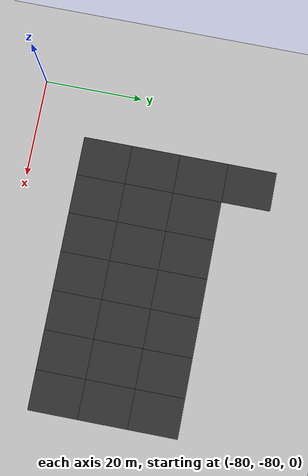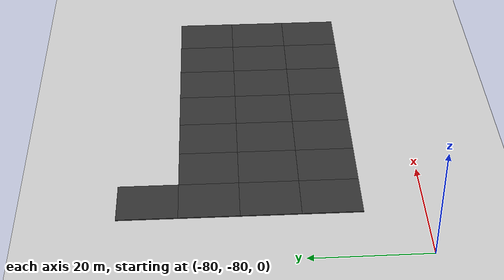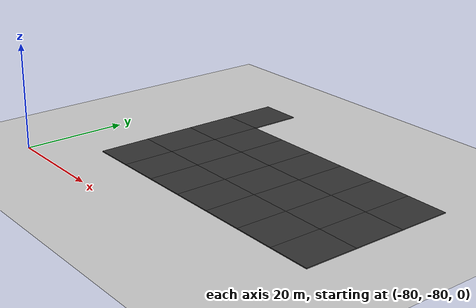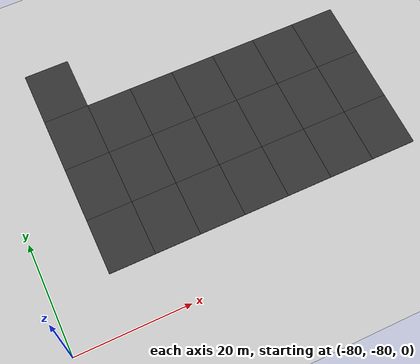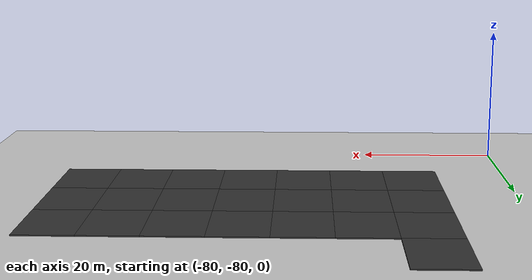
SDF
<sdf version="1.7">
 <world name="default">
  <model name="ground_plane">
   <static>1</static>
   <link name="link">
    <collision name="collision">
     <geometry><plane><normal>0 0 1</normal><size>100 100</size></plane></geometry>
     <surface>
      <contact><collide_bitmask>65535</collide_bitmask></contact>
      <friction><ode><mu>100</mu><mu2>50</mu2></ode></friction>
     </surface>
    </collision>
    <visual name="visual">
     <cast_shadows>0</cast_shadows>
     <geometry><plane><normal>0 0 1</normal><size>100 100</size></plane></geometry>
     <material>
      <script><uri>file://media/materials/scripts/gazebo.material</uri><name>Gazebo/Grey</name></script>
     </material>
    </visual>
   </link>
  </model>
  <model name="mud_box_39">
   <link name="link">
    <inertial>
     <mass>1</mass>
     <inertia><ixx>1</ixx><ixy>0</ixy><ixz>0</ixz><iyy>1</iyy><iyz>0</iyz><izz>1</izz></inertia>
    </inertial>
    <visual name="visual">
     <cast_shadows>0</cast_shadows>
     <geometry><box><size>8 10 0.2</size></box></geometry>
     <material>
      <script>
       <uri>model://mud_box/materials/scripts</uri>
       <uri>model://mud_box/materials/textures</uri>
       <name>vrc/mud</name>
      </script>
      <shader type="pixel"><normal_map>__default__</normal_map></shader>
      <ambient>0.2 0.2 0.2 1</ambient>
      <diffuse>0.2 0.2 0.2 1</diffuse>
      <specular>0.2 0.2 0.2 1</specular>
      <emissive>0 0 0 1</emissive>
     </material>
    </visual>
    <collision name="collision">
     <geometry><box><size>8 10 0.2</size></box></geometry>
     <surface>
      <friction>
       <ode><mu>1</mu><mu2>1</mu2><fdir1>0 0 0</fdir1><slip1>0</slip1><slip2>0</slip2></ode>
       <torsional>
        <coefficient>1</coefficient>
        <patch_radius>0</patch_radius>
        <surface_radius>0</surface_radius>
        <use_patch_radius>1</use_patch_radius>
        <ode><slip>0</slip></ode>
       </torsional>
      </friction>
      <bounce><restitution_coefficient>0</restitution_coefficient><threshold>1e+06</threshold></bounce>
      <contact>
       <collide_without_contact>0</collide_without_contact>
       <collide_without_contact_bitmask>1</collide_without_contact_bitmask>
       <collide_bitmask>1</collide_bitmask>
       <ode>
        <soft_cfm>0</soft_cfm>
        <soft_erp>0.2</soft_erp>
        <kp>1e+13</kp>
        <kd>1</kd>
        <max_vel>0.01</max_vel>
        <min_depth>0</min_depth>
       </ode>
       <bullet>
        <split_impulse>1</split_impulse>
        <split_impulse_penetration_threshold>-0.01</split_impulse_penetration_threshold>
        <soft_cfm>0</soft_cfm>
        <soft_erp>0.2</soft_erp>
        <kp>1e+13</kp>
        <kd>1</kd>
       </bullet>
      </contact>
     </surface>
    </collision>
   </link>
   <static>1</static>
   <pose>-18 -45 0 0 -0 0</pose>
  </model>
  <model name="mud_box_48">
   <link name="link">
    <inertial>
     <mass>1</mass>
     <inertia><ixx>1</ixx><ixy>0</ixy><ixz>0</ixz><iyy>1</iyy><iyz>0</iyz><izz>1</izz></inertia>
    </inertial>
    <visual name="visual">
     <cast_shadows>0</cast_shadows>
     <geometry><box><size>8 10 0.2</size></box></geometry>
     <material>
      <script>
       <uri>model://mud_box/materials/scripts</uri>
       <uri>model://mud_box/materials/textures</uri>
       <name>vrc/mud</name>
      </script>
      <shader type="pixel"><normal_map>__default__</normal_map></shader>
      <ambient>0.2 0.2 0.2 1</ambient>
      <diffuse>0.2 0.2 0.2 1</diffuse>
      <specular>0.2 0.2 0.2 1</specular>
      <emissive>0 0 0 1</emissive>
     </material>
    </visual>
    <collision name="collision">
     <geometry><box><size>8 10 0.2</size></box></geometry>
     <surface>
      <friction>
       <ode><mu>1</mu><mu2>1</mu2><fdir1>0 0 0</fdir1><slip1>0</slip1><slip2>0</slip2></ode>
       <torsional>
        <coefficient>1</coefficient>
        <patch_radius>0</patch_radius>
        <surface_radius>0</surface_radius>
        <use_patch_radius>1</use_patch_radius>
        <ode><slip>0</slip></ode>
       </torsional>
      </friction>
      <bounce><restitution_coefficient>0</restitution_coefficient><threshold>1e+06</threshold></bounce>
      <contact>
       <collide_without_contact>0</collide_without_contact>
       <collide_without_contact_bitmask>1</collide_without_contact_bitmask>
       <collide_bitmask>1</collide_bitmask>
       <ode>
        <soft_cfm>0</soft_cfm>
        <soft_erp>0.2</soft_erp>
        <kp>1e+13</kp>
        <kd>1</kd>
        <max_vel>0.01</max_vel>
        <min_depth>0</min_depth>
       </ode>
       <bullet>
        <split_impulse>1</split_impulse>
        <split_impulse_penetration_threshold>-0.01</split_impulse_penetration_threshold>
        <soft_cfm>0</soft_cfm>
        <soft_erp>0.2</soft_erp>
        <kp>1e+13</kp>
        <kd>1</kd>
       </bullet>
      </contact>
     </surface>
    </collision>
   </link>
   <static>1</static>
   <pose>-26 -45 0 0 -0 0</pose>
  </model>
  <model name="mud_box_49">
   <link name="link">
    <inertial>
     <mass>1</mass>
     <inertia><ixx>1</ixx><ixy>0</ixy><ixz>0</ixz><iyy>1</iyy><iyz>0</iyz><izz>1</izz></inertia>
    </inertial>
    <visual name="visual">
     <cast_shadows>0</cast_shadows>
     <geometry><box><size>8 10 0.2</size></box></geometry>
     <material>
      <script>
       <uri>model://mud_box/materials/scripts</uri>
       <uri>model://mud_box/materials/textures</uri>
       <name>vrc/mud</name>
      </script>
      <shader type="pixel"><normal_map>__default__</normal_map></shader>
      <ambient>0.2 0.2 0.2 1</ambient>
      <diffuse>0.2 0.2 0.2 1</diffuse>
      <specular>0.2 0.2 0.2 1</specular>
      <emissive>0 0 0 1</emissive>
     </material>
    </visual>
    <collision name="collision">
     <geometry><box><size>8 10 0.2</size></box></geometry>
     <surface>
      <friction>
       <ode><mu>1</mu><mu2>1</mu2><fdir1>0 0 0</fdir1><slip1>0</slip1><slip2>0</slip2></ode>
       <torsional>
        <coefficient>1</coefficient>
        <patch_radius>0</patch_radius>
        <surface_radius>0</surface_radius>
        <use_patch_radius>1</use_patch_radius>
        <ode><slip>0</slip></ode>
       </torsional>
      </friction>
      <bounce><restitution_coefficient>0</restitution_coefficient><threshold>1e+06</threshold></bounce>
      <contact>
       <collide_without_contact>0</collide_without_contact>
       <collide_without_contact_bitmask>1</collide_without_contact_bitmask>
       <collide_bitmask>1</collide_bitmask>
       <ode>
        <soft_cfm>0</soft_cfm>
        <soft_erp>0.2</soft_erp>
        <kp>1e+13</kp>
        <kd>1</kd>
        <max_vel>0.01</max_vel>
        <min_depth>0</min_depth>
       </ode>
       <bullet>
        <split_impulse>1</split_impulse>
        <split_impulse_penetration_threshold>-0.01</split_impulse_penetration_threshold>
        <soft_cfm>0</soft_cfm>
        <soft_erp>0.2</soft_erp>
        <kp>1e+13</kp>
        <kd>1</kd>
       </bullet>
      </contact>
     </surface>
    </collision>
   </link>
   <static>1</static>
   <pose>-34 -45 0 0 -0 0</pose>
  </model>
  <model name="mud_box_58">
   <link name="link">
    <inertial>
     <mass>1</mass>
     <inertia><ixx>1</ixx><ixy>0</ixy><ixz>0</ixz><iyy>1</iyy><iyz>0</iyz><izz>1</izz></inertia>
    </inertial>
    <visual name="visual">
     <cast_shadows>0</cast_shadows>
     <geometry><box><size>8 10 0.2</size></box></geometry>
     <material>
      <script>
       <uri>model://mud_box/materials/scripts</uri>
       <uri>model://mud_box/materials/textures</uri>
       <name>vrc/mud</name>
      </script>
      <shader type="pixel"><normal_map>__default__</normal_map></shader>
      <ambient>0.2 0.2 0.2 1</ambient>
      <diffuse>0.2 0.2 0.2 1</diffuse>
      <specular>0.2 0.2 0.2 1</specular>
      <emissive>0 0 0 1</emissive>
     </material>
    </visual>
    <collision name="collision">
     <geometry><box><size>8 10 0.2</size></box></geometry>
     <surface>
      <friction>
       <ode><mu>1</mu><mu2>1</mu2><fdir1>0 0 0</fdir1><slip1>0</slip1><slip2>0</slip2></ode>
       <torsional>
        <coefficient>1</coefficient>
        <patch_radius>0</patch_radius>
        <surface_radius>0</surface_radius>
        <use_patch_radius>1</use_patch_radius>
        <ode><slip>0</slip></ode>
       </torsional>
      </friction>
      <bounce><restitution_coefficient>0</restitution_coefficient><threshold>1e+06</threshold></bounce>
      <contact>
       <collide_without_contact>0</collide_without_contact>
       <collide_without_contact_bitmask>1</collide_without_contact_bitmask>
       <collide_bitmask>1</collide_bitmask>
       <ode>
        <soft_cfm>0</soft_cfm>
        <soft_erp>0.2</soft_erp>
        <kp>1e+13</kp>
        <kd>1</kd>
        <max_vel>0.01</max_vel>
        <min_depth>0</min_depth>
       </ode>
       <bullet>
        <split_impulse>1</split_impulse>
        <split_impulse_penetration_threshold>-0.01</split_impulse_penetration_threshold>
        <soft_cfm>0</soft_cfm>
        <soft_erp>0.2</soft_erp>
        <kp>1e+13</kp>
        <kd>1</kd>
       </bullet>
      </contact>
     </surface>
    </collision>
   </link>
   <static>1</static>
   <pose>-42 -45 0 0 -0 0</pose>
  </model>
  <model name="mud_box_59">
   <link name="link">
    <inertial>
     <mass>1</mass>
     <inertia><ixx>1</ixx><ixy>0</ixy><ixz>0</ixz><iyy>1</iyy><iyz>0</iyz><izz>1</izz></inertia>
    </inertial>
    <visual name="visual">
     <cast_shadows>0</cast_shadows>
     <geometry><box><size>8 10 0.2</size></box></geometry>
     <material>
      <script>
       <uri>model://mud_box/materials/scripts</uri>
       <uri>model://mud_box/materials/textures</uri>
       <name>vrc/mud</name>
      </script>
      <shader type="pixel"><normal_map>__default__</normal_map></shader>
      <ambient>0.2 0.2 0.2 1</ambient>
      <diffuse>0.2 0.2 0.2 1</diffuse>
      <specular>0.2 0.2 0.2 1</specular>
      <emissive>0 0 0 1</emissive>
     </material>
    </visual>
    <collision name="collision">
     <geometry><box><size>8 10 0.2</size></box></geometry>
     <surface>
      <friction>
       <ode><mu>1</mu><mu2>1</mu2><fdir1>0 0 0</fdir1><slip1>0</slip1><slip2>0</slip2></ode>
       <torsional>
        <coefficient>1</coefficient>
        <patch_radius>0</patch_radius>
        <surface_radius>0</surface_radius>
        <use_patch_radius>1</use_patch_radius>
        <ode><slip>0</slip></ode>
       </torsional>
      </friction>
      <bounce><restitution_coefficient>0</restitution_coefficient><threshold>1e+06</threshold></bounce>
      <contact>
       <collide_without_contact>0</collide_without_contact>
       <collide_without_contact_bitmask>1</collide_without_contact_bitmask>
       <collide_bitmask>1</collide_bitmask>
       <ode>
        <soft_cfm>0</soft_cfm>
        <soft_erp>0.2</soft_erp>
        <kp>1e+13</kp>
        <kd>1</kd>
        <max_vel>0.01</max_vel>
        <min_depth>0</min_depth>
       </ode>
       <bullet>
        <split_impulse>1</split_impulse>
        <split_impulse_penetration_threshold>-0.01</split_impulse_penetration_threshold>
        <soft_cfm>0</soft_cfm>
        <soft_erp>0.2</soft_erp>
        <kp>1e+13</kp>
        <kd>1</kd>
       </bullet>
      </contact>
     </surface>
    </collision>
   </link>
   <static>1</static>
   <pose>-50 -45 0 0 -0 0</pose>
  </model>
  <model name="mud_box_72">
   <link name="link">
    <inertial>
     <mass>1</mass>
     <inertia><ixx>1</ixx><ixy>0</ixy><ixz>0</ixz><iyy>1</iyy><iyz>0</iyz><izz>1</izz></inertia>
    </inertial>
    <visual name="visual">
     <cast_shadows>0</cast_shadows>
     <geometry><box><size>8 10 0.2</size></box></geometry>
     <material>
      <script>
       <uri>model://mud_box/materials/scripts</uri>
       <uri>model://mud_box/materials/textures</uri>
       <name>vrc/mud</name>
      </script>
      <shader type="pixel"><normal_map>__default__</normal_map></shader>
      <ambient>0.2 0.2 0.2 1</ambient>
      <diffuse>0.2 0.2 0.2 1</diffuse>
      <specular>0.2 0.2 0.2 1</specular>
      <emissive>0 0 0 1</emissive>
     </material>
    </visual>
    <collision name="collision">
     <geometry><box><size>8 10 0.2</size></box></geometry>
     <surface>
      <friction>
       <ode><mu>1</mu><mu2>1</mu2><fdir1>0 0 0</fdir1><slip1>0</slip1><slip2>0</slip2></ode>
       <torsional>
        <coefficient>1</coefficient>
        <patch_radius>0</patch_radius>
        <surface_radius>0</surface_radius>
        <use_patch_radius>1</use_patch_radius>
        <ode><slip>0</slip></ode>
       </torsional>
      </friction>
      <bounce><restitution_coefficient>0</restitution_coefficient><threshold>1e+06</threshold></bounce>
      <contact>
       <collide_without_contact>0</collide_without_contact>
       <collide_without_contact_bitmask>1</collide_without_contact_bitmask>
       <collide_bitmask>1</collide_bitmask>
       <ode>
        <soft_cfm>0</soft_cfm>
        <soft_erp>0.2</soft_erp>
        <kp>1e+13</kp>
        <kd>1</kd>
        <max_vel>0.01</max_vel>
        <min_depth>0</min_depth>
       </ode>
       <bullet>
        <split_impulse>1</split_impulse>
        <split_impulse_penetration_threshold>-0.01</split_impulse_penetration_threshold>
        <soft_cfm>0</soft_cfm>
        <soft_erp>0.2</soft_erp>
        <kp>1e+13</kp>
        <kd>1</kd>
       </bullet>
      </contact>
     </surface>
    </collision>
   </link>
   <static>1</static>
   <pose>-18 -55 0 0 -0 0</pose>
  </model>
  <model name="mud_box_73">
   <link name="link">
    <inertial>
     <mass>1</mass>
     <inertia><ixx>1</ixx><ixy>0</ixy><ixz>0</ixz><iyy>1</iyy><iyz>0</iyz><izz>1</izz></inertia>
    </inertial>
    <visual name="visual">
     <cast_shadows>0</cast_shadows>
     <geometry><box><size>8 10 0.2</size></box></geometry>
     <material>
      <script>
       <uri>model://mud_box/materials/scripts</uri>
       <uri>model://mud_box/materials/textures</uri>
       <name>vrc/mud</name>
      </script>
      <shader type="pixel"><normal_map>__default__</normal_map></shader>
      <ambient>0.2 0.2 0.2 1</ambient>
      <diffuse>0.2 0.2 0.2 1</diffuse>
      <specular>0.2 0.2 0.2 1</specular>
      <emissive>0 0 0 1</emissive>
     </material>
    </visual>
    <collision name="collision">
     <geometry><box><size>8 10 0.2</size></box></geometry>
     <surface>
      <friction>
       <ode><mu>1</mu><mu2>1</mu2><fdir1>0 0 0</fdir1><slip1>0</slip1><slip2>0</slip2></ode>
       <torsional>
        <coefficient>1</coefficient>
        <patch_radius>0</patch_radius>
        <surface_radius>0</surface_radius>
        <use_patch_radius>1</use_patch_radius>
        <ode><slip>0</slip></ode>
       </torsional>
      </friction>
      <bounce><restitution_coefficient>0</restitution_coefficient><threshold>1e+06</threshold></bounce>
      <contact>
       <collide_without_contact>0</collide_without_contact>
       <collide_without_contact_bitmask>1</collide_without_contact_bitmask>
       <collide_bitmask>1</collide_bitmask>
       <ode>
        <soft_cfm>0</soft_cfm>
        <soft_erp>0.2</soft_erp>
        <kp>1e+13</kp>
        <kd>1</kd>
        <max_vel>0.01</max_vel>
        <min_depth>0</min_depth>
       </ode>
       <bullet>
        <split_impulse>1</split_impulse>
        <split_impulse_penetration_threshold>-0.01</split_impulse_penetration_threshold>
        <soft_cfm>0</soft_cfm>
        <soft_erp>0.2</soft_erp>
        <kp>1e+13</kp>
        <kd>1</kd>
       </bullet>
      </contact>
     </surface>
    </collision>
   </link>
   <static>1</static>
   <pose>-26 -55 0 0 -0 0</pose>
  </model>
  <model name="mud_box_74">
   <link name="link">
    <inertial>
     <mass>1</mass>
     <inertia><ixx>1</ixx><ixy>0</ixy><ixz>0</ixz><iyy>1</iyy><iyz>0</iyz><izz>1</izz></inertia>
    </inertial>
    <visual name="visual">
     <cast_shadows>0</cast_shadows>
     <geometry><box><size>8 10 0.2</size></box></geometry>
     <material>
      <script>
       <uri>model://mud_box/materials/scripts</uri>
       <uri>model://mud_box/materials/textures</uri>
       <name>vrc/mud</name>
      </script>
      <shader type="pixel"><normal_map>__default__</normal_map></shader>
      <ambient>0.2 0.2 0.2 1</ambient>
      <diffuse>0.2 0.2 0.2 1</diffuse>
      <specular>0.2 0.2 0.2 1</specular>
      <emissive>0 0 0 1</emissive>
     </material>
    </visual>
    <collision name="collision">
     <geometry><box><size>8 10 0.2</size></box></geometry>
     <surface>
      <friction>
       <ode><mu>1</mu><mu2>1</mu2><fdir1>0 0 0</fdir1><slip1>0</slip1><slip2>0</slip2></ode>
       <torsional>
        <coefficient>1</coefficient>
        <patch_radius>0</patch_radius>
        <surface_radius>0</surface_radius>
        <use_patch_radius>1</use_patch_radius>
        <ode><slip>0</slip></ode>
       </torsional>
      </friction>
      <bounce><restitution_coefficient>0</restitution_coefficient><threshold>1e+06</threshold></bounce>
      <contact>
       <collide_without_contact>0</collide_without_contact>
       <collide_without_contact_bitmask>1</collide_without_contact_bitmask>
       <collide_bitmask>1</collide_bitmask>
       <ode>
        <soft_cfm>0</soft_cfm>
        <soft_erp>0.2</soft_erp>
        <kp>1e+13</kp>
        <kd>1</kd>
        <max_vel>0.01</max_vel>
        <min_depth>0</min_depth>
       </ode>
       <bullet>
        <split_impulse>1</split_impulse>
        <split_impulse_penetration_threshold>-0.01</split_impulse_penetration_threshold>
        <soft_cfm>0</soft_cfm>
        <soft_erp>0.2</soft_erp>
        <kp>1e+13</kp>
        <kd>1</kd>
       </bullet>
      </contact>
     </surface>
    </collision>
   </link>
   <static>1</static>
   <pose>-34 -55 0 0 -0 0</pose>
  </model>
  <model name="mud_box_75">
   <link name="link">
    <inertial>
     <mass>1</mass>
     <inertia><ixx>1</ixx><ixy>0</ixy><ixz>0</ixz><iyy>1</iyy><iyz>0</iyz><izz>1</izz></inertia>
    </inertial>
    <visual name="visual">
     <cast_shadows>0</cast_shadows>
     <geometry><box><size>8 10 0.2</size></box></geometry>
     <material>
      <script>
       <uri>model://mud_box/materials/scripts</uri>
       <uri>model://mud_box/materials/textures</uri>
       <name>vrc/mud</name>
      </script>
      <shader type="pixel"><normal_map>__default__</normal_map></shader>
      <ambient>0.2 0.2 0.2 1</ambient>
      <diffuse>0.2 0.2 0.2 1</diffuse>
      <specular>0.2 0.2 0.2 1</specular>
      <emissive>0 0 0 1</emissive>
     </material>
    </visual>
    <collision name="collision">
     <geometry><box><size>8 10 0.2</size></box></geometry>
     <surface>
      <friction>
       <ode><mu>1</mu><mu2>1</mu2><fdir1>0 0 0</fdir1><slip1>0</slip1><slip2>0</slip2></ode>
       <torsional>
        <coefficient>1</coefficient>
        <patch_radius>0</patch_radius>
        <surface_radius>0</surface_radius>
        <use_patch_radius>1</use_patch_radius>
        <ode><slip>0</slip></ode>
       </torsional>
      </friction>
      <bounce><restitution_coefficient>0</restitution_coefficient><threshold>1e+06</threshold></bounce>
      <contact>
       <collide_without_contact>0</collide_without_contact>
       <collide_without_contact_bitmask>1</collide_without_contact_bitmask>
       <collide_bitmask>1</collide_bitmask>
       <ode>
        <soft_cfm>0</soft_cfm>
        <soft_erp>0.2</soft_erp>
        <kp>1e+13</kp>
        <kd>1</kd>
        <max_vel>0.01</max_vel>
        <min_depth>0</min_depth>
       </ode>
       <bullet>
        <split_impulse>1</split_impulse>
        <split_impulse_penetration_threshold>-0.01</split_impulse_penetration_threshold>
        <soft_cfm>0</soft_cfm>
        <soft_erp>0.2</soft_erp>
        <kp>1e+13</kp>
        <kd>1</kd>
       </bullet>
      </contact>
     </surface>
    </collision>
   </link>
   <static>1</static>
   <pose>-42 -55 0 0 -0 0</pose>
  </model>
  <model name="mud_box_76">
   <link name="link">
    <inertial>
     <mass>1</mass>
     <inertia><ixx>1</ixx><ixy>0</ixy><ixz>0</ixz><iyy>1</iyy><iyz>0</iyz><izz>1</izz></inertia>
    </inertial>
    <visual name="visual">
     <cast_shadows>0</cast_shadows>
     <geometry><box><size>8 10 0.2</size></box></geometry>
     <material>
      <script>
       <uri>model://mud_box/materials/scripts</uri>
       <uri>model://mud_box/materials/textures</uri>
       <name>vrc/mud</name>
      </script>
      <shader type="pixel"><normal_map>__default__</normal_map></shader>
      <ambient>0.2 0.2 0.2 1</ambient>
      <diffuse>0.2 0.2 0.2 1</diffuse>
      <specular>0.2 0.2 0.2 1</specular>
      <emissive>0 0 0 1</emissive>
     </material>
    </visual>
    <collision name="collision">
     <geometry><box><size>8 10 0.2</size></box></geometry>
     <surface>
      <friction>
       <ode><mu>1</mu><mu2>1</mu2><fdir1>0 0 0</fdir1><slip1>0</slip1><slip2>0</slip2></ode>
       <torsional>
        <coefficient>1</coefficient>
        <patch_radius>0</patch_radius>
        <surface_radius>0</surface_radius>
        <use_patch_radius>1</use_patch_radius>
        <ode><slip>0</slip></ode>
       </torsional>
      </friction>
      <bounce><restitution_coefficient>0</restitution_coefficient><threshold>1e+06</threshold></bounce>
      <contact>
       <collide_without_contact>0</collide_without_contact>
       <collide_without_contact_bitmask>1</collide_without_contact_bitmask>
       <collide_bitmask>1</collide_bitmask>
       <ode>
        <soft_cfm>0</soft_cfm>
        <soft_erp>0.2</soft_erp>
        <kp>1e+13</kp>
        <kd>1</kd>
        <max_vel>0.01</max_vel>
        <min_depth>0</min_depth>
       </ode>
       <bullet>
        <split_impulse>1</split_impulse>
        <split_impulse_penetration_threshold>-0.01</split_impulse_penetration_threshold>
        <soft_cfm>0</soft_cfm>
        <soft_erp>0.2</soft_erp>
        <kp>1e+13</kp>
        <kd>1</kd>
       </bullet>
      </contact>
     </surface>
    </collision>
   </link>
   <static>1</static>
   <pose>-50 -55 0 0 -0 0</pose>
  </model>
  <model name="mud_box_77">
   <link name="link">
    <inertial>
     <mass>1</mass>
     <inertia><ixx>1</ixx><ixy>0</ixy><ixz>0</ixz><iyy>1</iyy><iyz>0</iyz><izz>1</izz></inertia>
    </inertial>
    <visual name="visual">
     <cast_shadows>0</cast_shadows>
     <geometry><box><size>8 10 0.2</size></box></geometry>
     <material>
      <script>
       <uri>model://mud_box/materials/scripts</uri>
       <uri>model://mud_box/materials/textures</uri>
       <name>vrc/mud</name>
      </script>
      <shader type="pixel"><normal_map>__default__</normal_map></shader>
      <ambient>0.2 0.2 0.2 1</ambient>
      <diffuse>0.2 0.2 0.2 1</diffuse>
      <specular>0.2 0.2 0.2 1</specular>
      <emissive>0 0 0 1</emissive>
     </material>
    </visual>
    <collision name="collision">
     <geometry><box><size>8 10 0.2</size></box></geometry>
     <surface>
      <friction>
       <ode><mu>1</mu><mu2>1</mu2><fdir1>0 0 0</fdir1><slip1>0</slip1><slip2>0</slip2></ode>
       <torsional>
        <coefficient>1</coefficient>
        <patch_radius>0</patch_radius>
        <surface_radius>0</surface_radius>
        <use_patch_radius>1</use_patch_radius>
        <ode><slip>0</slip></ode>
       </torsional>
      </friction>
      <bounce><restitution_coefficient>0</restitution_coefficient><threshold>1e+06</threshold></bounce>
      <contact>
       <collide_without_contact>0</collide_without_contact>
       <collide_without_contact_bitmask>1</collide_without_contact_bitmask>
       <collide_bitmask>1</collide_bitmask>
       <ode>
        <soft_cfm>0</soft_cfm>
        <soft_erp>0.2</soft_erp>
        <kp>1e+13</kp>
        <kd>1</kd>
        <max_vel>0.01</max_vel>
        <min_depth>0</min_depth>
       </ode>
       <bullet>
        <split_impulse>1</split_impulse>
        <split_impulse_penetration_threshold>-0.01</split_impulse_penetration_threshold>
        <soft_cfm>0</soft_cfm>
        <soft_erp>0.2</soft_erp>
        <kp>1e+13</kp>
        <kd>1</kd>
       </bullet>
      </contact>
     </surface>
    </collision>
   </link>
   <static>1</static>
   <pose>-58 -55 0 0 -0 0</pose>
  </model>
  <model name="mud_box_78">
   <link name="link">
    <inertial>
     <mass>1</mass>
     <inertia><ixx>1</ixx><ixy>0</ixy><ixz>0</ixz><iyy>1</iyy><iyz>0</iyz><izz>1</izz></inertia>
    </inertial>
    <visual name="visual">
     <cast_shadows>0</cast_shadows>
     <geometry><box><size>8 10 0.2</size></box></geometry>
     <material>
      <script>
       <uri>model://mud_box/materials/scripts</uri>
       <uri>model://mud_box/materials/textures</uri>
       <name>vrc/mud</name>
      </script>
      <shader type="pixel"><normal_map>__default__</normal_map></shader>
      <ambient>0.2 0.2 0.2 1</ambient>
      <diffuse>0.2 0.2 0.2 1</diffuse>
      <specular>0.2 0.2 0.2 1</specular>
      <emissive>0 0 0 1</emissive>
     </material>
    </visual>
    <collision name="collision">
     <geometry><box><size>8 10 0.2</size></box></geometry>
     <surface>
      <friction>
       <ode><mu>1</mu><mu2>1</mu2><fdir1>0 0 0</fdir1><slip1>0</slip1><slip2>0</slip2></ode>
       <torsional>
        <coefficient>1</coefficient>
        <patch_radius>0</patch_radius>
        <surface_radius>0</surface_radius>
        <use_patch_radius>1</use_patch_radius>
        <ode><slip>0</slip></ode>
       </torsional>
      </friction>
      <bounce><restitution_coefficient>0</restitution_coefficient><threshold>1e+06</threshold></bounce>
      <contact>
       <collide_without_contact>0</collide_without_contact>
       <collide_without_contact_bitmask>1</collide_without_contact_bitmask>
       <collide_bitmask>1</collide_bitmask>
       <ode>
        <soft_cfm>0</soft_cfm>
        <soft_erp>0.2</soft_erp>
        <kp>1e+13</kp>
        <kd>1</kd>
        <max_vel>0.01</max_vel>
        <min_depth>0</min_depth>
       </ode>
       <bullet>
        <split_impulse>1</split_impulse>
        <split_impulse_penetration_threshold>-0.01</split_impulse_penetration_threshold>
        <soft_cfm>0</soft_cfm>
        <soft_erp>0.2</soft_erp>
        <kp>1e+13</kp>
        <kd>1</kd>
       </bullet>
      </contact>
     </surface>
    </collision>
   </link>
   <static>1</static>
   <pose>-58 -45 0 0 -0 0</pose>
  </model>
  <model name="mud_box_121">
   <link name="link">
    <inertial>
     <mass>1</mass>
     <inertia><ixx>1</ixx><ixy>0</ixy><ixz>0</ixz><iyy>1</iyy><iyz>0</iyz><izz>1</izz></inertia>
    </inertial>
    <visual name="visual">
     <cast_shadows>0</cast_shadows>
     <geometry><box><size>8 10 0.2</size></box></geometry>
     <material>
      <script>
       <uri>model://mud_box/materials/scripts</uri>
       <uri>model://mud_box/materials/textures</uri>
       <name>vrc/mud</name>
      </script>
      <shader type="pixel"><normal_map>__default__</normal_map></shader>
      <ambient>0.2 0.2 0.2 1</ambient>
      <diffuse>0.2 0.2 0.2 1</diffuse>
      <specular>0.2 0.2 0.2 1</specular>
      <emissive>0 0 0 1</emissive>
     </material>
    </visual>
    <collision name="collision">
     <geometry><box><size>8 10 0.2</size></box></geometry>
     <surface>
      <friction>
       <ode><mu>1</mu><mu2>1</mu2><fdir1>0 0 0</fdir1><slip1>0</slip1><slip2>0</slip2></ode>
       <torsional>
        <coefficient>1</coefficient>
        <patch_radius>0</patch_radius>
        <surface_radius>0</surface_radius>
        <use_patch_radius>1</use_patch_radius>
        <ode><slip>0</slip></ode>
       </torsional>
      </friction>
      <bounce><restitution_coefficient>0</restitution_coefficient><threshold>1e+06</threshold></bounce>
      <contact>
       <collide_without_contact>0</collide_without_contact>
       <collide_without_contact_bitmask>1</collide_without_contact_bitmask>
       <collide_bitmask>1</collide_bitmask>
       <ode>
        <soft_cfm>0</soft_cfm>
        <soft_erp>0.2</soft_erp>
        <kp>1e+13</kp>
        <kd>1</kd>
        <max_vel>0.01</max_vel>
        <min_depth>0</min_depth>
       </ode>
       <bullet>
        <split_impulse>1</split_impulse>
        <split_impulse_penetration_threshold>-0.01</split_impulse_penetration_threshold>
        <soft_cfm>0</soft_cfm>
        <soft_erp>0.2</soft_erp>
        <kp>1e+13</kp>
        <kd>1</kd>
       </bullet>
      </contact>
     </surface>
    </collision>
   </link>
   <static>1</static>
   <pose>-18 -65 0 0 -0 0</pose>
  </model>
  <model name="mud_box_122">
   <link name="link">
    <inertial>
     <mass>1</mass>
     <inertia><ixx>1</ixx><ixy>0</ixy><ixz>0</ixz><iyy>1</iyy><iyz>0</iyz><izz>1</izz></inertia>
    </inertial>
    <visual name="visual">
     <cast_shadows>0</cast_shadows>
     <geometry><box><size>8 10 0.2</size></box></geometry>
     <material>
      <script>
       <uri>model://mud_box/materials/scripts</uri>
       <uri>model://mud_box/materials/textures</uri>
       <name>vrc/mud</name>
      </script>
      <shader type="pixel"><normal_map>__default__</normal_map></shader>
      <ambient>0.2 0.2 0.2 1</ambient>
      <diffuse>0.2 0.2 0.2 1</diffuse>
      <specular>0.2 0.2 0.2 1</specular>
      <emissive>0 0 0 1</emissive>
     </material>
    </visual>
    <collision name="collision">
     <geometry><box><size>8 10 0.2</size></box></geometry>
     <surface>
      <friction>
       <ode><mu>1</mu><mu2>1</mu2><fdir1>0 0 0</fdir1><slip1>0</slip1><slip2>0</slip2></ode>
       <torsional>
        <coefficient>1</coefficient>
        <patch_radius>0</patch_radius>
        <surface_radius>0</surface_radius>
        <use_patch_radius>1</use_patch_radius>
        <ode><slip>0</slip></ode>
       </torsional>
      </friction>
      <bounce><restitution_coefficient>0</restitution_coefficient><threshold>1e+06</threshold></bounce>
      <contact>
       <collide_without_contact>0</collide_without_contact>
       <collide_without_contact_bitmask>1</collide_without_contact_bitmask>
       <collide_bitmask>1</collide_bitmask>
       <ode>
        <soft_cfm>0</soft_cfm>
        <soft_erp>0.2</soft_erp>
        <kp>1e+13</kp>
        <kd>1</kd>
        <max_vel>0.01</max_vel>
        <min_depth>0</min_depth>
       </ode>
       <bullet>
        <split_impulse>1</split_impulse>
        <split_impulse_penetration_threshold>-0.01</split_impulse_penetration_threshold>
        <soft_cfm>0</soft_cfm>
        <soft_erp>0.2</soft_erp>
        <kp>1e+13</kp>
        <kd>1</kd>
       </bullet>
      </contact>
     </surface>
    </collision>
   </link>
   <static>1</static>
   <pose>-26 -65 0 0 -0 0</pose>
  </model>
  <model name="mud_box_123">
   <link name="link">
    <inertial>
     <mass>1</mass>
     <inertia><ixx>1</ixx><ixy>0</ixy><ixz>0</ixz><iyy>1</iyy><iyz>0</iyz><izz>1</izz></inertia>
    </inertial>
    <visual name="visual">
     <cast_shadows>0</cast_shadows>
     <geometry><box><size>8 10 0.2</size></box></geometry>
     <material>
      <script>
       <uri>model://mud_box/materials/scripts</uri>
       <uri>model://mud_box/materials/textures</uri>
       <name>vrc/mud</name>
      </script>
      <shader type="pixel"><normal_map>__default__</normal_map></shader>
      <ambient>0.2 0.2 0.2 1</ambient>
      <diffuse>0.2 0.2 0.2 1</diffuse>
      <specular>0.2 0.2 0.2 1</specular>
      <emissive>0 0 0 1</emissive>
     </material>
    </visual>
    <collision name="collision">
     <geometry><box><size>8 10 0.2</size></box></geometry>
     <surface>
      <friction>
       <ode><mu>1</mu><mu2>1</mu2><fdir1>0 0 0</fdir1><slip1>0</slip1><slip2>0</slip2></ode>
       <torsional>
        <coefficient>1</coefficient>
        <patch_radius>0</patch_radius>
        <surface_radius>0</surface_radius>
        <use_patch_radius>1</use_patch_radius>
        <ode><slip>0</slip></ode>
       </torsional>
      </friction>
      <bounce><restitution_coefficient>0</restitution_coefficient><threshold>1e+06</threshold></bounce>
      <contact>
       <collide_without_contact>0</collide_without_contact>
       <collide_without_contact_bitmask>1</collide_without_contact_bitmask>
       <collide_bitmask>1</collide_bitmask>
       <ode>
        <soft_cfm>0</soft_cfm>
        <soft_erp>0.2</soft_erp>
        <kp>1e+13</kp>
        <kd>1</kd>
        <max_vel>0.01</max_vel>
        <min_depth>0</min_depth>
       </ode>
       <bullet>
        <split_impulse>1</split_impulse>
        <split_impulse_penetration_threshold>-0.01</split_impulse_penetration_threshold>
        <soft_cfm>0</soft_cfm>
        <soft_erp>0.2</soft_erp>
        <kp>1e+13</kp>
        <kd>1</kd>
       </bullet>
      </contact>
     </surface>
    </collision>
   </link>
   <static>1</static>
   <pose>-34 -65 0 0 -0 0</pose>
  </model>
  <model name="mud_box_124">
   <link name="link">
    <inertial>
     <mass>1</mass>
     <inertia><ixx>1</ixx><ixy>0</ixy><ixz>0</ixz><iyy>1</iyy><iyz>0</iyz><izz>1</izz></inertia>
    </inertial>
    <visual name="visual">
     <cast_shadows>0</cast_shadows>
     <geometry><box><size>8 10 0.2</size></box></geometry>
     <material>
      <script>
       <uri>model://mud_box/materials/scripts</uri>
       <uri>model://mud_box/materials/textures</uri>
       <name>vrc/mud</name>
      </script>
      <shader type="pixel"><normal_map>__default__</normal_map></shader>
      <ambient>0.2 0.2 0.2 1</ambient>
      <diffuse>0.2 0.2 0.2 1</diffuse>
      <specular>0.2 0.2 0.2 1</specular>
      <emissive>0 0 0 1</emissive>
     </material>
    </visual>
    <collision name="collision">
     <geometry><box><size>8 10 0.2</size></box></geometry>
     <surface>
      <friction>
       <ode><mu>1</mu><mu2>1</mu2><fdir1>0 0 0</fdir1><slip1>0</slip1><slip2>0</slip2></ode>
       <torsional>
        <coefficient>1</coefficient>
        <patch_radius>0</patch_radius>
        <surface_radius>0</surface_radius>
        <use_patch_radius>1</use_patch_radius>
        <ode><slip>0</slip></ode>
       </torsional>
      </friction>
      <bounce><restitution_coefficient>0</restitution_coefficient><threshold>1e+06</threshold></bounce>
      <contact>
       <collide_without_contact>0</collide_without_contact>
       <collide_without_contact_bitmask>1</collide_without_contact_bitmask>
       <collide_bitmask>1</collide_bitmask>
       <ode>
        <soft_cfm>0</soft_cfm>
        <soft_erp>0.2</soft_erp>
        <kp>1e+13</kp>
        <kd>1</kd>
        <max_vel>0.01</max_vel>
        <min_depth>0</min_depth>
       </ode>
       <bullet>
        <split_impulse>1</split_impulse>
        <split_impulse_penetration_threshold>-0.01</split_impulse_penetration_threshold>
        <soft_cfm>0</soft_cfm>
        <soft_erp>0.2</soft_erp>
        <kp>1e+13</kp>
        <kd>1</kd>
       </bullet>
      </contact>
     </surface>
    </collision>
   </link>
   <static>1</static>
   <pose>-42 -65 0 0 -0 0</pose>
  </model>
  <model name="mud_box_125">
   <link name="link">
    <inertial>
     <mass>1</mass>
     <inertia><ixx>1</ixx><ixy>0</ixy><ixz>0</ixz><iyy>1</iyy><iyz>0</iyz><izz>1</izz></inertia>
    </inertial>
    <visual name="visual">
     <cast_shadows>0</cast_shadows>
     <geometry><box><size>8 10 0.2</size></box></geometry>
     <material>
      <script>
       <uri>model://mud_box/materials/scripts</uri>
       <uri>model://mud_box/materials/textures</uri>
       <name>vrc/mud</name>
      </script>
      <shader type="pixel"><normal_map>__default__</normal_map></shader>
      <ambient>0.2 0.2 0.2 1</ambient>
      <diffuse>0.2 0.2 0.2 1</diffuse>
      <specular>0.2 0.2 0.2 1</specular>
      <emissive>0 0 0 1</emissive>
     </material>
    </visual>
    <collision name="collision">
     <geometry><box><size>8 10 0.2</size></box></geometry>
     <surface>
      <friction>
       <ode><mu>1</mu><mu2>1</mu2><fdir1>0 0 0</fdir1><slip1>0</slip1><slip2>0</slip2></ode>
       <torsional>
        <coefficient>1</coefficient>
        <patch_radius>0</patch_radius>
        <surface_radius>0</surface_radius>
        <use_patch_radius>1</use_patch_radius>
        <ode><slip>0</slip></ode>
       </torsional>
      </friction>
      <bounce><restitution_coefficient>0</restitution_coefficient><threshold>1e+06</threshold></bounce>
      <contact>
       <collide_without_contact>0</collide_without_contact>
       <collide_without_contact_bitmask>1</collide_without_contact_bitmask>
       <collide_bitmask>1</collide_bitmask>
       <ode>
        <soft_cfm>0</soft_cfm>
        <soft_erp>0.2</soft_erp>
        <kp>1e+13</kp>
        <kd>1</kd>
        <max_vel>0.01</max_vel>
        <min_depth>0</min_depth>
       </ode>
       <bullet>
        <split_impulse>1</split_impulse>
        <split_impulse_penetration_threshold>-0.01</split_impulse_penetration_threshold>
        <soft_cfm>0</soft_cfm>
        <soft_erp>0.2</soft_erp>
        <kp>1e+13</kp>
        <kd>1</kd>
       </bullet>
      </contact>
     </surface>
    </collision>
   </link>
   <static>1</static>
   <pose>-50 -65 0 0 -0 0</pose>
  </model>
  <model name="mud_box_126">
   <link name="link">
    <inertial>
     <mass>1</mass>
     <inertia><ixx>1</ixx><ixy>0</ixy><ixz>0</ixz><iyy>1</iyy><iyz>0</iyz><izz>1</izz></inertia>
    </inertial>
    <visual name="visual">
     <cast_shadows>0</cast_shadows>
     <geometry><box><size>8 10 0.2</size></box></geometry>
     <material>
      <script>
       <uri>model://mud_box/materials/scripts</uri>
       <uri>model://mud_box/materials/textures</uri>
       <name>vrc/mud</name>
      </script>
      <shader type="pixel"><normal_map>__default__</normal_map></shader>
      <ambient>0.2 0.2 0.2 1</ambient>
      <diffuse>0.2 0.2 0.2 1</diffuse>
      <specular>0.2 0.2 0.2 1</specular>
      <emissive>0 0 0 1</emissive>
     </material>
    </visual>
    <collision name="collision">
     <geometry><box><size>8 10 0.2</size></box></geometry>
     <surface>
      <friction>
       <ode><mu>1</mu><mu2>1</mu2><fdir1>0 0 0</fdir1><slip1>0</slip1><slip2>0</slip2></ode>
       <torsional>
        <coefficient>1</coefficient>
        <patch_radius>0</patch_radius>
        <surface_radius>0</surface_radius>
        <use_patch_radius>1</use_patch_radius>
        <ode><slip>0</slip></ode>
       </torsional>
      </friction>
      <bounce><restitution_coefficient>0</restitution_coefficient><threshold>1e+06</threshold></bounce>
      <contact>
       <collide_without_contact>0</collide_without_contact>
       <collide_without_contact_bitmask>1</collide_without_contact_bitmask>
       <collide_bitmask>1</collide_bitmask>
       <ode>
        <soft_cfm>0</soft_cfm>
        <soft_erp>0.2</soft_erp>
        <kp>1e+13</kp>
        <kd>1</kd>
        <max_vel>0.01</max_vel>
        <min_depth>0</min_depth>
       </ode>
       <bullet>
        <split_impulse>1</split_impulse>
        <split_impulse_penetration_threshold>-0.01</split_impulse_penetration_threshold>
        <soft_cfm>0</soft_cfm>
        <soft_erp>0.2</soft_erp>
        <kp>1e+13</kp>
        <kd>1</kd>
       </bullet>
      </contact>
     </surface>
    </collision>
   </link>
   <static>1</static>
   <pose>-58 -65 0 0 -0 0</pose>
  </model>
  <model name="mud_box_127">
   <link name="link">
    <inertial>
     <mass>1</mass>
     <inertia><ixx>1</ixx><ixy>0</ixy><ixz>0</ixz><iyy>1</iyy><iyz>0</iyz><izz>1</izz></inertia>
    </inertial>
    <visual name="visual">
     <cast_shadows>0</cast_shadows>
     <geometry><box><size>8 10 0.2</size></box></geometry>
     <material>
      <script>
       <uri>model://mud_box/materials/scripts</uri>
       <uri>model://mud_box/materials/textures</uri>
       <name>vrc/mud</name>
      </script>
      <shader type="pixel"><normal_map>__default__</normal_map></shader>
      <ambient>0.2 0.2 0.2 1</ambient>
      <diffuse>0.2 0.2 0.2 1</diffuse>
      <specular>0.2 0.2 0.2 1</specular>
      <emissive>0 0 0 1</emissive>
     </material>
    </visual>
    <collision name="collision">
     <geometry><box><size>8 10 0.2</size></box></geometry>
     <surface>
      <friction>
       <ode><mu>1</mu><mu2>1</mu2><fdir1>0 0 0</fdir1><slip1>0</slip1><slip2>0</slip2></ode>
       <torsional>
        <coefficient>1</coefficient>
        <patch_radius>0</patch_radius>
        <surface_radius>0</surface_radius>
        <use_patch_radius>1</use_patch_radius>
        <ode><slip>0</slip></ode>
       </torsional>
      </friction>
      <bounce><restitution_coefficient>0</restitution_coefficient><threshold>1e+06</threshold></bounce>
      <contact>
       <collide_without_contact>0</collide_without_contact>
       <collide_without_contact_bitmask>1</collide_without_contact_bitmask>
       <collide_bitmask>1</collide_bitmask>
       <ode>
        <soft_cfm>0</soft_cfm>
        <soft_erp>0.2</soft_erp>
        <kp>1e+13</kp>
        <kd>1</kd>
        <max_vel>0.01</max_vel>
        <min_depth>0</min_depth>
       </ode>
       <bullet>
        <split_impulse>1</split_impulse>
        <split_impulse_penetration_threshold>-0.01</split_impulse_penetration_threshold>
        <soft_cfm>0</soft_cfm>
        <soft_erp>0.2</soft_erp>
        <kp>1e+13</kp>
        <kd>1</kd>
       </bullet>
      </contact>
     </surface>
    </collision>
   </link>
   <static>1</static>
   <pose>-66 -65 0 0 -0 0</pose>
  </model>
  <model name="mud_box_128">
   <link name="link">
    <inertial>
     <mass>1</mass>
     <inertia><ixx>1</ixx><ixy>0</ixy><ixz>0</ixz><iyy>1</iyy><iyz>0</iyz><izz>1</izz></inertia>
    </inertial>
    <visual name="visual">
     <cast_shadows>0</cast_shadows>
     <geometry><box><size>8 10 0.2</size></box></geometry>
     <material>
      <script>
       <uri>model://mud_box/materials/scripts</uri>
       <uri>model://mud_box/materials/textures</uri>
       <name>vrc/mud</name>
      </script>
      <shader type="pixel"><normal_map>__default__</normal_map></shader>
      <ambient>0.2 0.2 0.2 1</ambient>
      <diffuse>0.2 0.2 0.2 1</diffuse>
      <specular>0.2 0.2 0.2 1</specular>
      <emissive>0 0 0 1</emissive>
     </material>
    </visual>
    <collision name="collision">
     <geometry><box><size>8 10 0.2</size></box></geometry>
     <surface>
      <friction>
       <ode><mu>1</mu><mu2>1</mu2><fdir1>0 0 0</fdir1><slip1>0</slip1><slip2>0</slip2></ode>
       <torsional>
        <coefficient>1</coefficient>
        <patch_radius>0</patch_radius>
        <surface_radius>0</surface_radius>
        <use_patch_radius>1</use_patch_radius>
        <ode><slip>0</slip></ode>
       </torsional>
      </friction>
      <bounce><restitution_coefficient>0</restitution_coefficient><threshold>1e+06</threshold></bounce>
      <contact>
       <collide_without_contact>0</collide_without_contact>
       <collide_without_contact_bitmask>1</collide_without_contact_bitmask>
       <collide_bitmask>1</collide_bitmask>
       <ode>
        <soft_cfm>0</soft_cfm>
        <soft_erp>0.2</soft_erp>
        <kp>1e+13</kp>
        <kd>1</kd>
        <max_vel>0.01</max_vel>
        <min_depth>0</min_depth>
       </ode>
       <bullet>
        <split_impulse>1</split_impulse>
        <split_impulse_penetration_threshold>-0.01</split_impulse_penetration_threshold>
        <soft_cfm>0</soft_cfm>
        <soft_erp>0.2</soft_erp>
        <kp>1e+13</kp>
        <kd>1</kd>
       </bullet>
      </contact>
     </surface>
    </collision>
   </link>
   <static>1</static>
   <pose>-66 -55 0 0 -0 0</pose>
  </model>
  <model name="mud_box_129">
   <link name="link">
    <inertial>
     <mass>1</mass>
     <inertia><ixx>1</ixx><ixy>0</ixy><ixz>0</ixz><iyy>1</iyy><iyz>0</iyz><izz>1</izz></inertia>
    </inertial>
    <visual name="visual">
     <cast_shadows>0</cast_shadows>
     <geometry><box><size>8 10 0.2</size></box></geometry>
     <material>
      <script>
       <uri>model://mud_box/materials/scripts</uri>
       <uri>model://mud_box/materials/textures</uri>
       <name>vrc/mud</name>
      </script>
      <shader type="pixel"><normal_map>__default__</normal_map></shader>
      <ambient>0.2 0.2 0.2 1</ambient>
      <diffuse>0.2 0.2 0.2 1</diffuse>
      <specular>0.2 0.2 0.2 1</specular>
      <emissive>0 0 0 1</emissive>
     </material>
    </visual>
    <collision name="collision">
     <geometry><box><size>8 10 0.2</size></box></geometry>
     <surface>
      <friction>
       <ode><mu>1</mu><mu2>1</mu2><fdir1>0 0 0</fdir1><slip1>0</slip1><slip2>0</slip2></ode>
       <torsional>
        <coefficient>1</coefficient>
        <patch_radius>0</patch_radius>
        <surface_radius>0</surface_radius>
        <use_patch_radius>1</use_patch_radius>
        <ode><slip>0</slip></ode>
       </torsional>
      </friction>
      <bounce><restitution_coefficient>0</restitution_coefficient><threshold>1e+06</threshold></bounce>
      <contact>
       <collide_without_contact>0</collide_without_contact>
       <collide_without_contact_bitmask>1</collide_without_contact_bitmask>
       <collide_bitmask>1</collide_bitmask>
       <ode>
        <soft_cfm>0</soft_cfm>
        <soft_erp>0.2</soft_erp>
        <kp>1e+13</kp>
        <kd>1</kd>
        <max_vel>0.01</max_vel>
        <min_depth>0</min_depth>
       </ode>
       <bullet>
        <split_impulse>1</split_impulse>
        <split_impulse_penetration_threshold>-0.01</split_impulse_penetration_threshold>
        <soft_cfm>0</soft_cfm>
        <soft_erp>0.2</soft_erp>
        <kp>1e+13</kp>
        <kd>1</kd>
       </bullet>
      </contact>
     </surface>
    </collision>
   </link>
   <static>1</static>
   <pose>-66 -45 0 0 -0 0</pose>
  </model>
  <model name="mud_box_130">
   <link name="link">
    <inertial>
     <mass>1</mass>
     <inertia><ixx>1</ixx><ixy>0</ixy><ixz>0</ixz><iyy>1</iyy><iyz>0</iyz><izz>1</izz></inertia>
    </inertial>
    <visual name="visual">
     <cast_shadows>0</cast_shadows>
     <geometry><box><size>8 10 0.2</size></box></geometry>
     <material>
      <script>
       <uri>model://mud_box/materials/scripts</uri>
       <uri>model://mud_box/materials/textures</uri>
       <name>vrc/mud</name>
      </script>
      <shader type="pixel"><normal_map>__default__</normal_map></shader>
      <ambient>0.2 0.2 0.2 1</ambient>
      <diffuse>0.2 0.2 0.2 1</diffuse>
      <specular>0.2 0.2 0.2 1</specular>
      <emissive>0 0 0 1</emissive>
     </material>
    </visual>
    <collision name="collision">
     <geometry><box><size>8 10 0.2</size></box></geometry>
     <surface>
      <friction>
       <ode><mu>1</mu><mu2>1</mu2><fdir1>0 0 0</fdir1><slip1>0</slip1><slip2>0</slip2></ode>
       <torsional>
        <coefficient>1</coefficient>
        <patch_radius>0</patch_radius>
        <surface_radius>0</surface_radius>
        <use_patch_radius>1</use_patch_radius>
        <ode><slip>0</slip></ode>
       </torsional>
      </friction>
      <bounce><restitution_coefficient>0</restitution_coefficient><threshold>1e+06</threshold></bounce>
      <contact>
       <collide_without_contact>0</collide_without_contact>
       <collide_without_contact_bitmask>1</collide_without_contact_bitmask>
       <collide_bitmask>1</collide_bitmask>
       <ode>
        <soft_cfm>0</soft_cfm>
        <soft_erp>0.2</soft_erp>
        <kp>1e+13</kp>
        <kd>1</kd>
        <max_vel>0.01</max_vel>
        <min_depth>0</min_depth>
       </ode>
       <bullet>
        <split_impulse>1</split_impulse>
        <split_impulse_penetration_threshold>-0.01</split_impulse_penetration_threshold>
        <soft_cfm>0</soft_cfm>
        <soft_erp>0.2</soft_erp>
        <kp>1e+13</kp>
        <kd>1</kd>
       </bullet>
      </contact>
     </surface>
    </collision>
   </link>
   <static>1</static>
   <pose>-66 -35 0 0 -0 0</pose>
  </model>
 </world>
</sdf>
